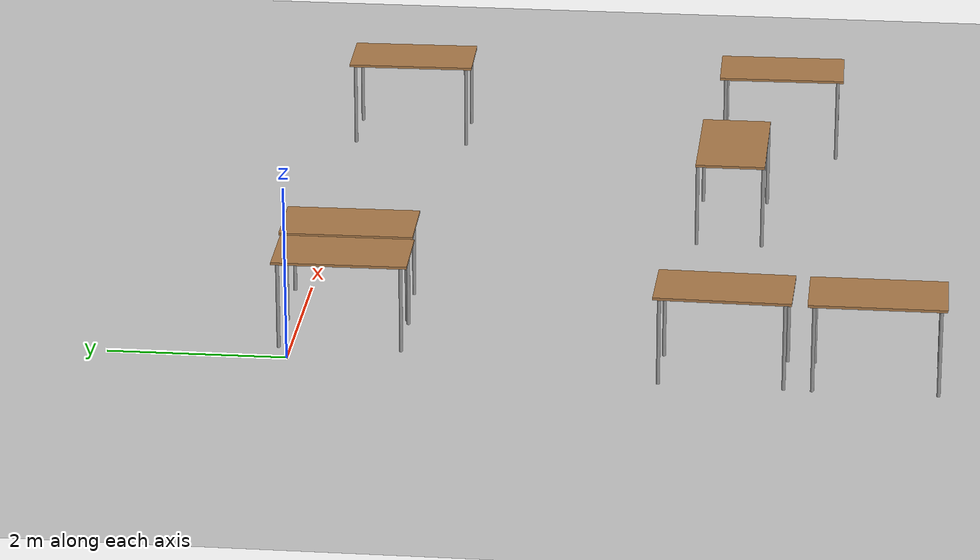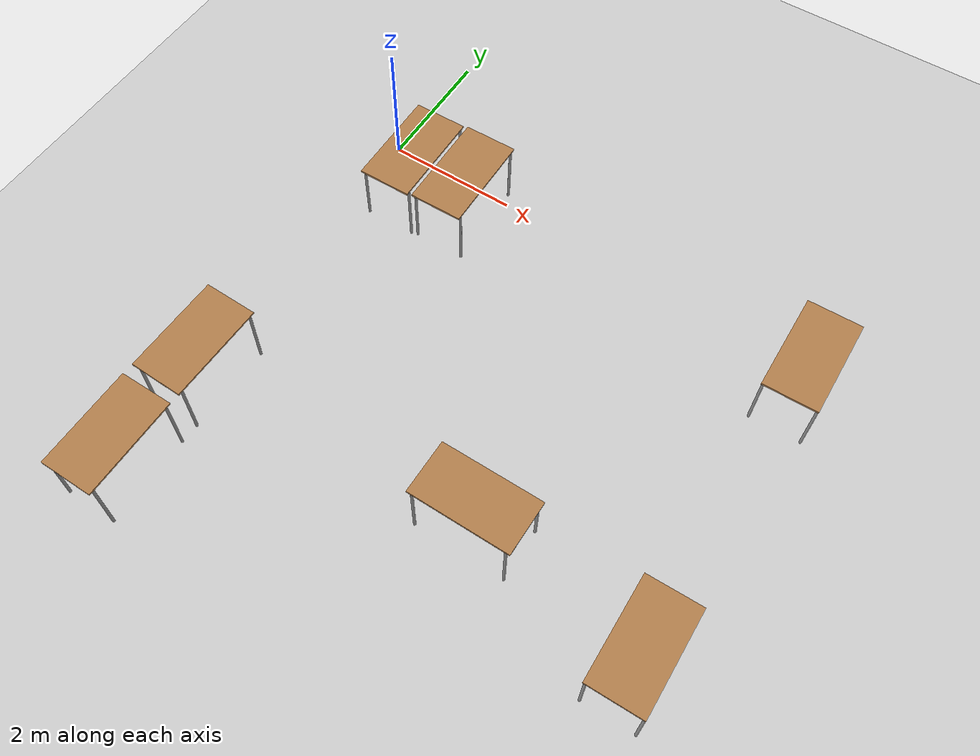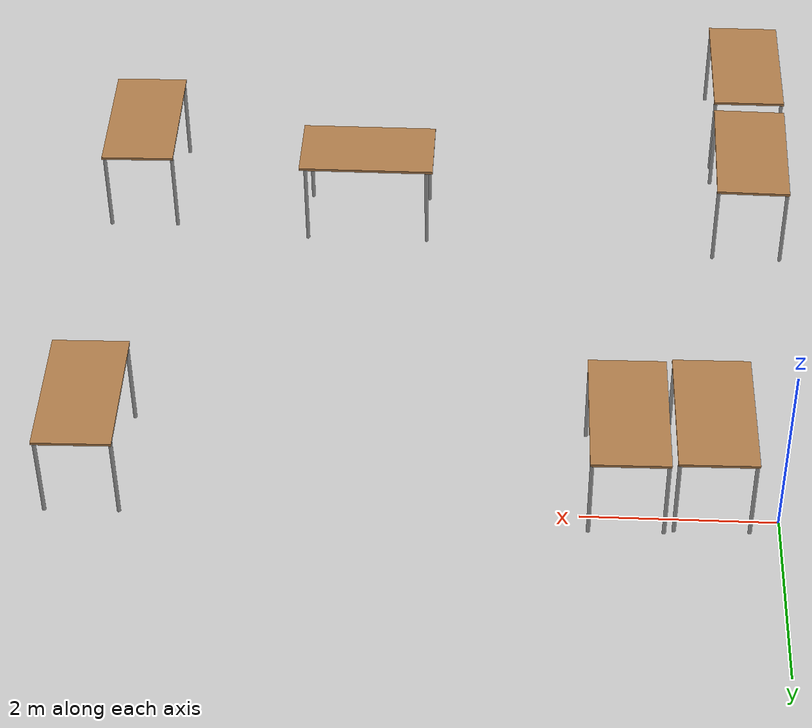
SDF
<sdf version="1.7">
 <world name="default">
  <model name="ground_plane">
   <static>1</static>
   <link name="link">
    <collision name="collision">
     <geometry><plane><normal>0 0 1</normal><size>100 100</size></plane></geometry>
     <surface>
      <contact><collide_bitmask>65535</collide_bitmask></contact>
      <friction><ode><mu>100</mu><mu2>50</mu2></ode></friction>
     </surface>
    </collision>
    <visual name="visual">
     <cast_shadows>0</cast_shadows>
     <geometry><plane><normal>0 0 1</normal><size>100 100</size></plane></geometry>
     <material>
      <script><uri>file://media/materials/scripts/gazebo.material</uri><name>Gazebo/Grey</name></script>
     </material>
    </visual>
   </link>
  </model>
  <model name="table_clone_0_clone_6">
   <static>1</static>
   <link name="link10">
    <collision name="surface">
     <pose>0 0 1 0 -0 0</pose>
     <geometry><box><size>1.5 0.8 0.03</size></box></geometry>
     <surface><friction><ode><mu>0.6</mu><mu2>0.6</mu2></ode></friction></surface>
    </collision>
    <visual name="visual1">
     <pose>0 0 1 0 -0 0</pose>
     <geometry><box><size>1.5 0.8 0.03</size></box></geometry>
     <material>
      <script><uri>file://media/materials/scripts/gazebo.material</uri><name>Gazebo/Wood</name></script>
     </material>
    </visual>
    <collision name="front_left_leg">
     <pose>0.68 0.38 0.5 0 -0 0</pose>
     <geometry><cylinder><radius>0.02</radius><length>1</length></cylinder></geometry>
    </collision>
    <visual name="front_left_leg">
     <pose>0.68 0.38 0.5 0 -0 0</pose>
     <geometry><cylinder><radius>0.02</radius><length>1</length></cylinder></geometry>
     <material>
      <script><uri>file://media/materials/scripts/gazebo.material</uri><name>Gazebo/Grey</name></script>
     </material>
    </visual>
    <collision name="front_right_leg">
     <pose>0.68 -0.38 0.5 0 -0 0</pose>
     <geometry><cylinder><radius>0.02</radius><length>1</length></cylinder></geometry>
    </collision>
    <visual name="front_right_leg">
     <pose>0.68 -0.38 0.5 0 -0 0</pose>
     <geometry><cylinder><radius>0.02</radius><length>1</length></cylinder></geometry>
     <material>
      <script><uri>file://media/materials/scripts/gazebo.material</uri><name>Gazebo/Grey</name></script>
     </material>
    </visual>
    <collision name="back_right_leg">
     <pose>-0.68 -0.38 0.5 0 -0 0</pose>
     <geometry><cylinder><radius>0.02</radius><length>1</length></cylinder></geometry>
    </collision>
    <visual name="back_right_leg">
     <pose>-0.68 -0.38 0.5 0 -0 0</pose>
     <geometry><cylinder><radius>0.02</radius><length>1</length></cylinder></geometry>
     <material>
      <script><uri>file://media/materials/scripts/gazebo.material</uri><name>Gazebo/Grey</name></script>
     </material>
    </visual>
    <collision name="back_left_leg">
     <pose>-0.68 0.38 0.5 0 -0 0</pose>
     <geometry><cylinder><radius>0.02</radius><length>1</length></cylinder></geometry>
    </collision>
    <visual name="back_left_leg">
     <pose>-0.68 0.38 0.5 0 -0 0</pose>
     <geometry><cylinder><radius>0.02</radius><length>1</length></cylinder></geometry>
     <material>
      <script><uri>file://media/materials/scripts/gazebo.material</uri><name>Gazebo/Grey</name></script>
     </material>
    </visual>
   </link>
   <pose>7.04645 -0.560802 0 0 -0 1.58908</pose>
  </model>
  <model name="table_clone_0_clone_9">
   <static>1</static>
   <link name="link11">
    <collision name="surface">
     <pose>0 0 1 0 -0 0</pose>
     <geometry><box><size>1.5 0.8 0.03</size></box></geometry>
     <surface><friction><ode><mu>0.6</mu><mu2>0.6</mu2></ode></friction></surface>
    </collision>
    <visual name="visual1">
     <pose>0 0 1 0 -0 0</pose>
     <geometry><box><size>1.5 0.8 0.03</size></box></geometry>
     <material>
      <script><uri>file://media/materials/scripts/gazebo.material</uri><name>Gazebo/Wood</name></script>
     </material>
    </visual>
    <collision name="front_left_leg">
     <pose>0.68 0.38 0.5 0 -0 0</pose>
     <geometry><cylinder><radius>0.02</radius><length>1</length></cylinder></geometry>
    </collision>
    <visual name="front_left_leg">
     <pose>0.68 0.38 0.5 0 -0 0</pose>
     <geometry><cylinder><radius>0.02</radius><length>1</length></cylinder></geometry>
     <material>
      <script><uri>file://media/materials/scripts/gazebo.material</uri><name>Gazebo/Grey</name></script>
     </material>
    </visual>
    <collision name="front_right_leg">
     <pose>0.68 -0.38 0.5 0 -0 0</pose>
     <geometry><cylinder><radius>0.02</radius><length>1</length></cylinder></geometry>
    </collision>
    <visual name="front_right_leg">
     <pose>0.68 -0.38 0.5 0 -0 0</pose>
     <geometry><cylinder><radius>0.02</radius><length>1</length></cylinder></geometry>
     <material>
      <script><uri>file://media/materials/scripts/gazebo.material</uri><name>Gazebo/Grey</name></script>
     </material>
    </visual>
    <collision name="back_right_leg">
     <pose>-0.68 -0.38 0.5 0 -0 0</pose>
     <geometry><cylinder><radius>0.02</radius><length>1</length></cylinder></geometry>
    </collision>
    <visual name="back_right_leg">
     <pose>-0.68 -0.38 0.5 0 -0 0</pose>
     <geometry><cylinder><radius>0.02</radius><length>1</length></cylinder></geometry>
     <material>
      <script><uri>file://media/materials/scripts/gazebo.material</uri><name>Gazebo/Grey</name></script>
     </material>
    </visual>
    <collision name="back_left_leg">
     <pose>-0.68 0.38 0.5 0 -0 0</pose>
     <geometry><cylinder><radius>0.02</radius><length>1</length></cylinder></geometry>
    </collision>
    <visual name="back_left_leg">
     <pose>-0.68 0.38 0.5 0 -0 0</pose>
     <geometry><cylinder><radius>0.02</radius><length>1</length></cylinder></geometry>
     <material>
      <script><uri>file://media/materials/scripts/gazebo.material</uri><name>Gazebo/Grey</name></script>
     </material>
    </visual>
   </link>
   <pose>7.02703 -5.11024 0 0 -0 1.58908</pose>
  </model>
  <model name="table_clone_clone_clone_0_clone">
   <static>1</static>
   <link name="link53">
    <collision name="surface">
     <pose>0 0 1 0 -0 0</pose>
     <geometry><box><size>1.5 0.8 0.03</size></box></geometry>
     <surface><friction><ode><mu>0.6</mu><mu2>0.6</mu2></ode></friction></surface>
    </collision>
    <visual name="visual1">
     <pose>0 0 1 0 -0 0</pose>
     <geometry><box><size>1.5 0.8 0.03</size></box></geometry>
     <material>
      <script><uri>file://media/materials/scripts/gazebo.material</uri><name>Gazebo/Wood</name></script>
     </material>
    </visual>
    <collision name="front_left_leg">
     <pose>0.68 0.38 0.5 0 -0 0</pose>
     <geometry><cylinder><radius>0.02</radius><length>1</length></cylinder></geometry>
    </collision>
    <visual name="front_left_leg">
     <pose>0.68 0.38 0.5 0 -0 0</pose>
     <geometry><cylinder><radius>0.02</radius><length>1</length></cylinder></geometry>
     <material>
      <script><uri>file://media/materials/scripts/gazebo.material</uri><name>Gazebo/Grey</name></script>
     </material>
    </visual>
    <collision name="front_right_leg">
     <pose>0.68 -0.38 0.5 0 -0 0</pose>
     <geometry><cylinder><radius>0.02</radius><length>1</length></cylinder></geometry>
    </collision>
    <visual name="front_right_leg">
     <pose>0.68 -0.38 0.5 0 -0 0</pose>
     <geometry><cylinder><radius>0.02</radius><length>1</length></cylinder></geometry>
     <material>
      <script><uri>file://media/materials/scripts/gazebo.material</uri><name>Gazebo/Grey</name></script>
     </material>
    </visual>
    <collision name="back_right_leg">
     <pose>-0.68 -0.38 0.5 0 -0 0</pose>
     <geometry><cylinder><radius>0.02</radius><length>1</length></cylinder></geometry>
    </collision>
    <visual name="back_right_leg">
     <pose>-0.68 -0.38 0.5 0 -0 0</pose>
     <geometry><cylinder><radius>0.02</radius><length>1</length></cylinder></geometry>
     <material>
      <script><uri>file://media/materials/scripts/gazebo.material</uri><name>Gazebo/Grey</name></script>
     </material>
    </visual>
    <collision name="back_left_leg">
     <pose>-0.68 0.38 0.5 0 -0 0</pose>
     <geometry><cylinder><radius>0.02</radius><length>1</length></cylinder></geometry>
    </collision>
    <visual name="back_left_leg">
     <pose>-0.68 0.38 0.5 0 -0 0</pose>
     <geometry><cylinder><radius>0.02</radius><length>1</length></cylinder></geometry>
     <material>
      <script><uri>file://media/materials/scripts/gazebo.material</uri><name>Gazebo/Grey</name></script>
     </material>
    </visual>
   </link>
   <pose>0.097904 -4.78362 0 0 0 -1.59028</pose>
  </model>
  <model name="table_clone_clone_0">
   <static>1</static>
   <link name="link54">
    <collision name="surface">
     <pose>0 0 1 0 -0 0</pose>
     <geometry><box><size>1.5 0.8 0.03</size></box></geometry>
     <surface><friction><ode><mu>0.6</mu><mu2>0.6</mu2></ode></friction></surface>
    </collision>
    <visual name="visual1">
     <pose>0 0 1 0 -0 0</pose>
     <geometry><box><size>1.5 0.8 0.03</size></box></geometry>
     <material>
      <script><uri>file://media/materials/scripts/gazebo.material</uri><name>Gazebo/Wood</name></script>
     </material>
    </visual>
    <collision name="front_left_leg">
     <pose>0.68 0.38 0.5 0 -0 0</pose>
     <geometry><cylinder><radius>0.02</radius><length>1</length></cylinder></geometry>
    </collision>
    <visual name="front_left_leg">
     <pose>0.68 0.38 0.5 0 -0 0</pose>
     <geometry><cylinder><radius>0.02</radius><length>1</length></cylinder></geometry>
     <material>
      <script><uri>file://media/materials/scripts/gazebo.material</uri><name>Gazebo/Grey</name></script>
     </material>
    </visual>
    <collision name="front_right_leg">
     <pose>0.68 -0.38 0.5 0 -0 0</pose>
     <geometry><cylinder><radius>0.02</radius><length>1</length></cylinder></geometry>
    </collision>
    <visual name="front_right_leg">
     <pose>0.68 -0.38 0.5 0 -0 0</pose>
     <geometry><cylinder><radius>0.02</radius><length>1</length></cylinder></geometry>
     <material>
      <script><uri>file://media/materials/scripts/gazebo.material</uri><name>Gazebo/Grey</name></script>
     </material>
    </visual>
    <collision name="back_right_leg">
     <pose>-0.68 -0.38 0.5 0 -0 0</pose>
     <geometry><cylinder><radius>0.02</radius><length>1</length></cylinder></geometry>
    </collision>
    <visual name="back_right_leg">
     <pose>-0.68 -0.38 0.5 0 -0 0</pose>
     <geometry><cylinder><radius>0.02</radius><length>1</length></cylinder></geometry>
     <material>
      <script><uri>file://media/materials/scripts/gazebo.material</uri><name>Gazebo/Grey</name></script>
     </material>
    </visual>
    <collision name="back_left_leg">
     <pose>-0.68 0.38 0.5 0 -0 0</pose>
     <geometry><cylinder><radius>0.02</radius><length>1</length></cylinder></geometry>
    </collision>
    <visual name="back_left_leg">
     <pose>-0.68 0.38 0.5 0 -0 0</pose>
     <geometry><cylinder><radius>0.02</radius><length>1</length></cylinder></geometry>
     <material>
      <script><uri>file://media/materials/scripts/gazebo.material</uri><name>Gazebo/Grey</name></script>
     </material>
    </visual>
   </link>
   <pose>0.074544 -6.44489 0 0 0 -1.57013</pose>
  </model>
  <model name="table_clone_1">
   <static>1</static>
   <link name="link55">
    <collision name="surface">
     <pose>0 0 1 0 -0 0</pose>
     <geometry><box><size>1.5 0.8 0.03</size></box></geometry>
     <surface><friction><ode><mu>0.6</mu><mu2>0.6</mu2></ode></friction></surface>
    </collision>
    <visual name="visual1">
     <pose>0 0 1 0 -0 0</pose>
     <geometry><box><size>1.5 0.8 0.03</size></box></geometry>
     <material>
      <script><uri>file://media/materials/scripts/gazebo.material</uri><name>Gazebo/Wood</name></script>
     </material>
    </visual>
    <collision name="front_left_leg">
     <pose>0.68 0.38 0.5 0 -0 0</pose>
     <geometry><cylinder><radius>0.02</radius><length>1</length></cylinder></geometry>
    </collision>
    <visual name="front_left_leg">
     <pose>0.68 0.38 0.5 0 -0 0</pose>
     <geometry><cylinder><radius>0.02</radius><length>1</length></cylinder></geometry>
     <material>
      <script><uri>file://media/materials/scripts/gazebo.material</uri><name>Gazebo/Grey</name></script>
     </material>
    </visual>
    <collision name="front_right_leg">
     <pose>0.68 -0.38 0.5 0 -0 0</pose>
     <geometry><cylinder><radius>0.02</radius><length>1</length></cylinder></geometry>
    </collision>
    <visual name="front_right_leg">
     <pose>0.68 -0.38 0.5 0 -0 0</pose>
     <geometry><cylinder><radius>0.02</radius><length>1</length></cylinder></geometry>
     <material>
      <script><uri>file://media/materials/scripts/gazebo.material</uri><name>Gazebo/Grey</name></script>
     </material>
    </visual>
    <collision name="back_right_leg">
     <pose>-0.68 -0.38 0.5 0 -0 0</pose>
     <geometry><cylinder><radius>0.02</radius><length>1</length></cylinder></geometry>
    </collision>
    <visual name="back_right_leg">
     <pose>-0.68 -0.38 0.5 0 -0 0</pose>
     <geometry><cylinder><radius>0.02</radius><length>1</length></cylinder></geometry>
     <material>
      <script><uri>file://media/materials/scripts/gazebo.material</uri><name>Gazebo/Grey</name></script>
     </material>
    </visual>
    <collision name="back_left_leg">
     <pose>-0.68 0.38 0.5 0 -0 0</pose>
     <geometry><cylinder><radius>0.02</radius><length>1</length></cylinder></geometry>
    </collision>
    <visual name="back_left_leg">
     <pose>-0.68 0.38 0.5 0 -0 0</pose>
     <geometry><cylinder><radius>0.02</radius><length>1</length></cylinder></geometry>
     <material>
      <script><uri>file://media/materials/scripts/gazebo.material</uri><name>Gazebo/Grey</name></script>
     </material>
    </visual>
   </link>
   <pose>4.42862 -4.64955 0 0 -0 0</pose>
  </model>
  <model name="table_clone_2_clone_clone_clone_0">
   <static>1</static>
   <link name="link60">
    <collision name="surface">
     <pose>0 0 1 0 -0 0</pose>
     <geometry><box><size>1.5 0.8 0.03</size></box></geometry>
     <surface><friction><ode><mu>0.6</mu><mu2>0.6</mu2></ode></friction></surface>
    </collision>
    <visual name="visual1">
     <pose>0 0 1 0 -0 0</pose>
     <geometry><box><size>1.5 0.8 0.03</size></box></geometry>
     <material>
      <script><uri>file://media/materials/scripts/gazebo.material</uri><name>Gazebo/Wood</name></script>
     </material>
    </visual>
    <collision name="front_left_leg">
     <pose>0.68 0.38 0.5 0 -0 0</pose>
     <geometry><cylinder><radius>0.02</radius><length>1</length></cylinder></geometry>
    </collision>
    <visual name="front_left_leg">
     <pose>0.68 0.38 0.5 0 -0 0</pose>
     <geometry><cylinder><radius>0.02</radius><length>1</length></cylinder></geometry>
     <material>
      <script><uri>file://media/materials/scripts/gazebo.material</uri><name>Gazebo/Grey</name></script>
     </material>
    </visual>
    <collision name="front_right_leg">
     <pose>0.68 -0.38 0.5 0 -0 0</pose>
     <geometry><cylinder><radius>0.02</radius><length>1</length></cylinder></geometry>
    </collision>
    <visual name="front_right_leg">
     <pose>0.68 -0.38 0.5 0 -0 0</pose>
     <geometry><cylinder><radius>0.02</radius><length>1</length></cylinder></geometry>
     <material>
      <script><uri>file://media/materials/scripts/gazebo.material</uri><name>Gazebo/Grey</name></script>
     </material>
    </visual>
    <collision name="back_right_leg">
     <pose>-0.68 -0.38 0.5 0 -0 0</pose>
     <geometry><cylinder><radius>0.02</radius><length>1</length></cylinder></geometry>
    </collision>
    <visual name="back_right_leg">
     <pose>-0.68 -0.38 0.5 0 -0 0</pose>
     <geometry><cylinder><radius>0.02</radius><length>1</length></cylinder></geometry>
     <material>
      <script><uri>file://media/materials/scripts/gazebo.material</uri><name>Gazebo/Grey</name></script>
     </material>
    </visual>
    <collision name="back_left_leg">
     <pose>-0.68 0.38 0.5 0 -0 0</pose>
     <geometry><cylinder><radius>0.02</radius><length>1</length></cylinder></geometry>
    </collision>
    <visual name="back_left_leg">
     <pose>-0.68 0.38 0.5 0 -0 0</pose>
     <geometry><cylinder><radius>0.02</radius><length>1</length></cylinder></geometry>
     <material>
      <script><uri>file://media/materials/scripts/gazebo.material</uri><name>Gazebo/Grey</name></script>
     </material>
    </visual>
   </link>
   <pose>0.684996 -0.53817 0 0 0 -1.55798</pose>
  </model>
  <model name="cardboard_box_1">
   <pose>0.006438 -3.96264 -1.0418e+07 0 -0 0</pose>
   <link name="link64">
    <pose>0.006438 -3.96264 0.149 0 -0 0</pose>
    <inertial>
     <inertia><ixx>1</ixx><ixy>0</ixy><ixz>0</ixz><iyy>1</iyy><iyz>0</iyz><izz>1</izz></inertia>
     <mass>1</mass>
    </inertial>
    <velocity>0 0 0 0 -0 0</velocity>
    <acceleration>0 1.9e-05 0 -0.000128 -2e-06 0</acceleration>
    <wrench>-1e-06 3.8e-05 -1e-06 0 -0 0</wrench>
   </link>
   <scale>1 1 1</scale>
  </model>
  <model name="table_clone_2_clone_clone_clone_clone_clone">
   <static>1</static>
   <link name="link68">
    <collision name="surface">
     <pose>0 0 1 0 -0 0</pose>
     <geometry><box><size>1.5 0.8 0.03</size></box></geometry>
     <surface><friction><ode><mu>0.6</mu><mu2>0.6</mu2></ode></friction></surface>
    </collision>
    <visual name="visual1">
     <pose>0 0 1 0 -0 0</pose>
     <geometry><box><size>1.5 0.8 0.03</size></box></geometry>
     <material>
      <script><uri>file://media/materials/scripts/gazebo.material</uri><name>Gazebo/Wood</name></script>
     </material>
    </visual>
    <collision name="front_left_leg">
     <pose>0.68 0.38 0.5 0 -0 0</pose>
     <geometry><cylinder><radius>0.02</radius><length>1</length></cylinder></geometry>
    </collision>
    <visual name="front_left_leg">
     <pose>0.68 0.38 0.5 0 -0 0</pose>
     <geometry><cylinder><radius>0.02</radius><length>1</length></cylinder></geometry>
     <material>
      <script><uri>file://media/materials/scripts/gazebo.material</uri><name>Gazebo/Grey</name></script>
     </material>
    </visual>
    <collision name="front_right_leg">
     <pose>0.68 -0.38 0.5 0 -0 0</pose>
     <geometry><cylinder><radius>0.02</radius><length>1</length></cylinder></geometry>
    </collision>
    <visual name="front_right_leg">
     <pose>0.68 -0.38 0.5 0 -0 0</pose>
     <geometry><cylinder><radius>0.02</radius><length>1</length></cylinder></geometry>
     <material>
      <script><uri>file://media/materials/scripts/gazebo.material</uri><name>Gazebo/Grey</name></script>
     </material>
    </visual>
    <collision name="back_right_leg">
     <pose>-0.68 -0.38 0.5 0 -0 0</pose>
     <geometry><cylinder><radius>0.02</radius><length>1</length></cylinder></geometry>
    </collision>
    <visual name="back_right_leg">
     <pose>-0.68 -0.38 0.5 0 -0 0</pose>
     <geometry><cylinder><radius>0.02</radius><length>1</length></cylinder></geometry>
     <material>
      <script><uri>file://media/materials/scripts/gazebo.material</uri><name>Gazebo/Grey</name></script>
     </material>
    </visual>
    <collision name="back_left_leg">
     <pose>-0.68 0.38 0.5 0 -0 0</pose>
     <geometry><cylinder><radius>0.02</radius><length>1</length></cylinder></geometry>
    </collision>
    <visual name="back_left_leg">
     <pose>-0.68 0.38 0.5 0 -0 0</pose>
     <geometry><cylinder><radius>0.02</radius><length>1</length></cylinder></geometry>
     <material>
      <script><uri>file://media/materials/scripts/gazebo.material</uri><name>Gazebo/Grey</name></script>
     </material>
    </visual>
   </link>
   <pose>1.544 -0.499855 0 0 0 -1.55798</pose>
  </model>
 </world>
</sdf>
